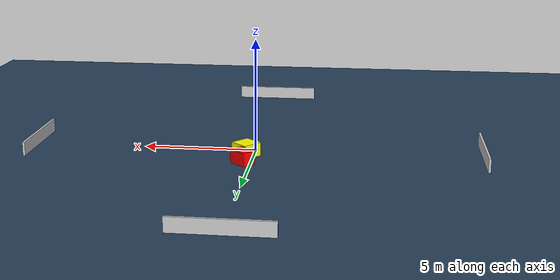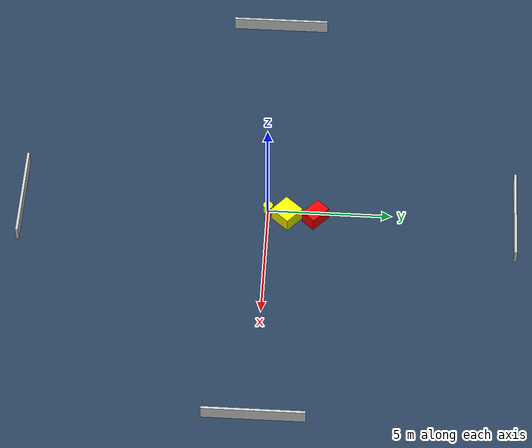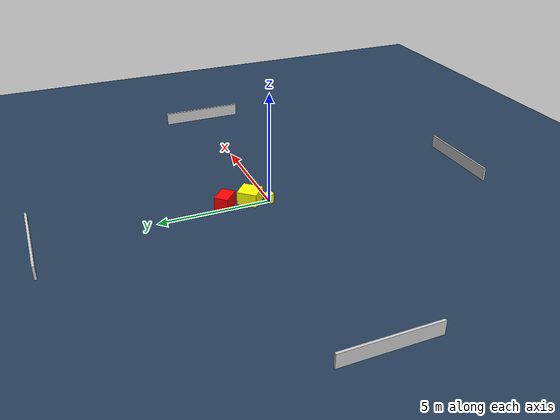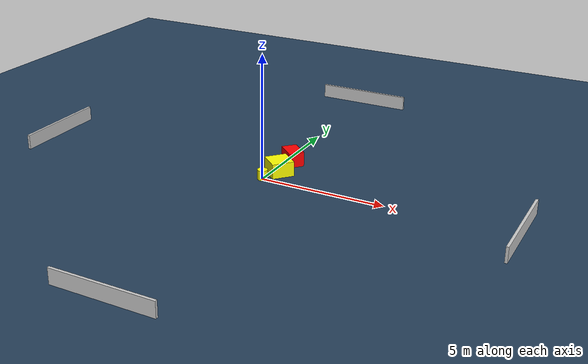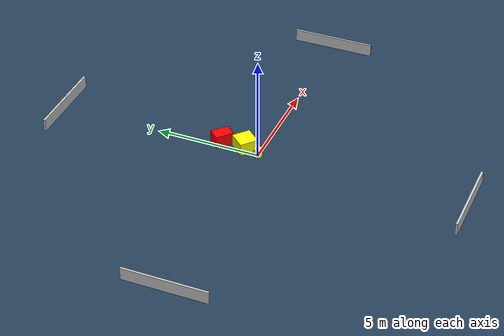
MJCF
<?xml version="1.0" ?>
<mujoco model="generated_environment">
  <option timestep="0.01" integrator="RK4" cone="elliptic"/>
  <default>
    <geom density="1"/>
  </default>
  <asset>
    <texture builtin="gradient" height="3072" name="skybox" rgb1="0.3 0.5 0.7" rgb2="0 0 0" type="skybox" width="512"/>
    <texture builtin="checker" height="300" name="groundplane" rgb1="0.2 0.3 0.4" rgb2="0.1 0.2 0.3" type="2d" width="300"/>
    <material name="groundplane" reflectance="0.2" texrepeat="5 5" texture="groundplane"/>
  </asset>
  <worldbody>
    <light dir="0 0 -1" directional="true" pos="0 0 1.5"/>
    <geom condim="3" friction="0.5 0.005 0.001" material="groundplane" name="floor" pos="0 0 0" size="0 0 0.05" type="plane"/>
    <body name="walls">
      <geom name="wall_1" condim="4" pos="-10.0 0.0 0.3" rgba="0.800000011920929 0.800000011920929 0.800000011920929 1.0" size="0.05 2.0 0.3" type="box"/>
      <geom name="wall_2" condim="4" pos="10.0 0.0 0.3" rgba="0.800000011920929 0.800000011920929 0.800000011920929 1.0" size="0.05 2.0 0.3" type="box"/>
      <geom name="wall_3" condim="4" pos="0.0 -10.0 0.3" rgba="0.800000011920929 0.800000011920929 0.800000011920929 1.0" size="2.0 0.05 0.3" type="box"/>
      <geom name="wall_4" condim="4" pos="0.0 10.0 0.3" rgba="0.800000011920929 0.800000011920929 0.800000011920929 1.0" size="2.0 0.05 0.3" type="box"/>
    </body>
    <body name="robot">
      <joint name="joint_x" type="slide" pos="0 0 0" axis="1 0 0"/>
      <joint name="joint_y" type="slide" pos="0 0 0" axis="0 1 0"/>
      <geom name="robot" type="cylinder" pos="0.0 0.0 0.2" size="0.2 0.2 0.0" mass="5.0" friction="1.0 0.005 0.0001" condim="4" rgba="1.0 1.0 0.0 1.0"/>
    </body>
    <body name="obstacle_1_movable">
      <geom name="obstacle_1_movable" condim="4" pos="0.3194135275016553 0.7845998781643985 0.3" euler="0 0 48.62702925863014" friction="0.0 0.005 0.001" rgba="1.0 1.0 0.0 1.0" size="0.44957721489096925 0.44384495402126023 0.3" type="box" mass="0.1"/>
      <joint type="free"/>
    </body>
    <body name="obstacle_2_static">
      <geom name="obstacle_2_static" condim="4" pos="0.322526722673631 1.9420589036302112 0.3" euler="0 0 47.299388410396" friction="0.0 0.005 0.001" rgba="1.0 0.0 0.0 1.0" size="0.3146871857274681 0.4405697470174953 0.3" type="box"/>
    </body>
  </worldbody>
  <actuator>
    <motor name="actuator_x" joint="joint_x" gear="1" ctrlrange="-1 1"/>
    <motor name="actuator_y" joint="joint_y" gear="1" ctrlrange="-1 1"/>
  </actuator>
</mujoco>
